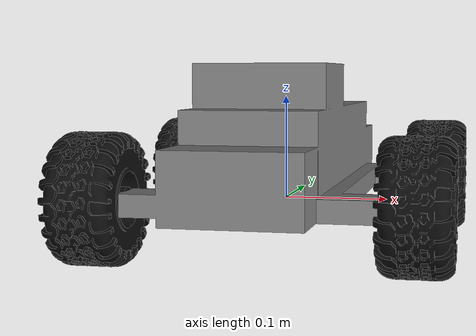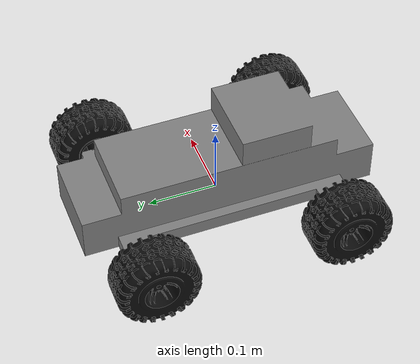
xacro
<?xml version="1.0"?>
<robot xmlns:xacro="http://www.ros.org/wiki/xacro">

    <material name="grey">
        <color rgba="0.5 0.5 0.5 1"/>
    </material>

    <material name="black">
        <color rgba="0.05 0.05 0.05 1"/>
    </material>

    <xacro:property name="scale_factor" value="0.001 0.001 0.001"/>

    <!-- ***************************************** Base ******************************************* -->

    <link name="base_link"/>
    <link name="base_footprint"/>

    <joint name="base_link_joint" type="fixed">
        <parent link="base_link"/>
        <child link="base_footprint"/>
        <origin xyz="0 0 0" rpy="0 0 0"/>
    </joint>

    <joint name="chassis_joint" type="fixed">
        <parent link="base_link"/>
        <child link="chassis"/>
        <origin xyz="0 0 0" rpy="0 0 0"/>
    </joint>

    <link name="chassis">
        <visual>
            <origin xyz="0 0 0" rpy="0 0 0"/>
            <geometry>
                <mesh filename="package://redcat/meshes/car_body.stl" scale="${scale_factor}"/>
            </geometry>
            <material name="grey"/>
        </visual>
        <collision>
            <origin xyz="0 0 0" rpy="0 0 0"/>
            <geometry>
                <mesh filename="package://redcat/meshes/collision/car_body.stl" scale="${scale_factor}"/>
            </geometry>
        </collision>
    </link>

    <!-- ************************************* Steering  ****************************************** -->

    <link name="fl_steering_link"/>
    <link name="fr_steering_link"/>

    <joint name="steering_joint" type="revolute">
        <parent link="chassis"/>
        <child link="fl_steering_link"/>
        <origin xyz="-0.1125 0.1405 0.0121" rpy="0 0 0"/>
        <axis xyz="0 0 1"/>
        <limit lower="${-pi/6}" upper="${pi/6}" effort="1" velocity="10"/>
    </joint>

    <joint name="steering_mimic_joint" type="revolute">
        <parent link="chassis"/>
        <child link="fr_steering_link"/>
        <origin xyz="0.1125 0.1405 0.0121" rpy="0 0 0"/>
        <axis xyz="0 0 1"/>
        <limit lower="${-pi/6}" upper="${pi/6}" effort="1" velocity="10"/>
        <mimic joint="steering_joint" multiplier="1" offset="0"/>
    </joint>

    <!-- ********************************* Front Left Drive  ************************************** -->

    <link name="fl_wheel">
        <visual>
            <origin xyz="0 0 0" rpy="0 0 0"/>
            <geometry>
                <mesh filename="package://redcat/meshes/wheel.stl" scale="${scale_factor}"/>
            </geometry>
            <material name="black"/>
        </visual>
        <collision>
            <origin xyz="0 0 0" rpy="0 0 0"/>
            <geometry>
                <mesh filename="package://redcat/meshes/collision/wheel.stl" scale="${scale_factor}"/>
            </geometry>
        </collision>
    </link>

    <joint name="drive_joint" type="continuous">
        <parent link="fl_steering_link"/>
        <child link="fl_wheel"/>
        <origin xyz="0 0 0" rpy="0 -${pi/2} 0"/>
        <axis xyz="0 0 1"/>
    </joint>

    <!-- ********************************* Front Right Drive  ************************************* -->

    <link name="fr_wheel">
        <visual>
            <origin xyz="0 0 0" rpy="0 0 0"/>
            <geometry>
                <mesh filename="package://redcat/meshes/wheel.stl" scale="${scale_factor}"/>
            </geometry>
            <material name="black"/>
        </visual>
        <collision>
            <origin xyz="0 0 0" rpy="0 0 0"/>
            <geometry>
                <mesh filename="package://redcat/meshes/collision/wheel.stl" scale="${scale_factor}"/>
            </geometry>
        </collision>
    </link>

    <joint name="fr_wheel_joint" type="continuous">
        <parent link="fr_steering_link"/>
        <child link="fr_wheel"/>
        <origin xyz="0 0 0" rpy="0 ${pi/2} 0"/>
        <axis xyz="0 0 1"/>
        <mimic joint="drive_joint" multiplier="-1" offset="0"/>
    </joint>

    <!-- ********************************* Rear Left Drive  *************************************** -->

    <link name="rl_wheel">
        <visual>
            <origin xyz="0 0 0" rpy="0 0 0"/>
            <geometry>
                <mesh filename="package://redcat/meshes/wheel.stl" scale="${scale_factor}"/>
            </geometry>
            <material name="black"/>
        </visual>
        <collision>
            <origin xyz="0 0 0" rpy="0 0 0"/>
            <geometry>
                <mesh filename="package://redcat/meshes/collision/wheel.stl" scale="${scale_factor}"/>
            </geometry>
        </collision>
    </link>

    <joint name="rl_wheel_joint" type="continuous">
        <parent link="chassis"/>
        <child link="rl_wheel"/>
        <origin xyz="-0.1125 -0.1405 0.0121" rpy="0 -${pi/2} 0"/>
        <axis xyz="0 0 1"/>
        <mimic joint="drive_joint" multiplier="1" offset="0"/>
    </joint>

    <!-- ********************************* Rear Right Drive  *************************************** -->

    <link name="rr_wheel">
        <visual>
            <origin xyz="0 0 0" rpy="0 0 0"/>
            <geometry>
                <mesh filename="package://redcat/meshes/wheel.stl" scale="${scale_factor}"/>
            </geometry>
            <material name="black"/>
        </visual>
        <collision>
            <origin xyz="0 0 0" rpy="0 0 0"/>
            <geometry>
                <mesh filename="package://redcat/meshes/collision/wheel.stl" scale="${scale_factor}"/>
            </geometry>
        </collision>
    </link>

    <joint name="rr_wheel_joint" type="continuous">
        <parent link="chassis"/>
        <child link="rr_wheel"/>
        <origin xyz="0.1125 -0.1405 0.0121" rpy="0 ${pi/2} 0"/>
        <axis xyz="0 0 1"/>
        <mimic joint="drive_joint" multiplier="-1" offset="0"/>
    </joint>

</robot>
